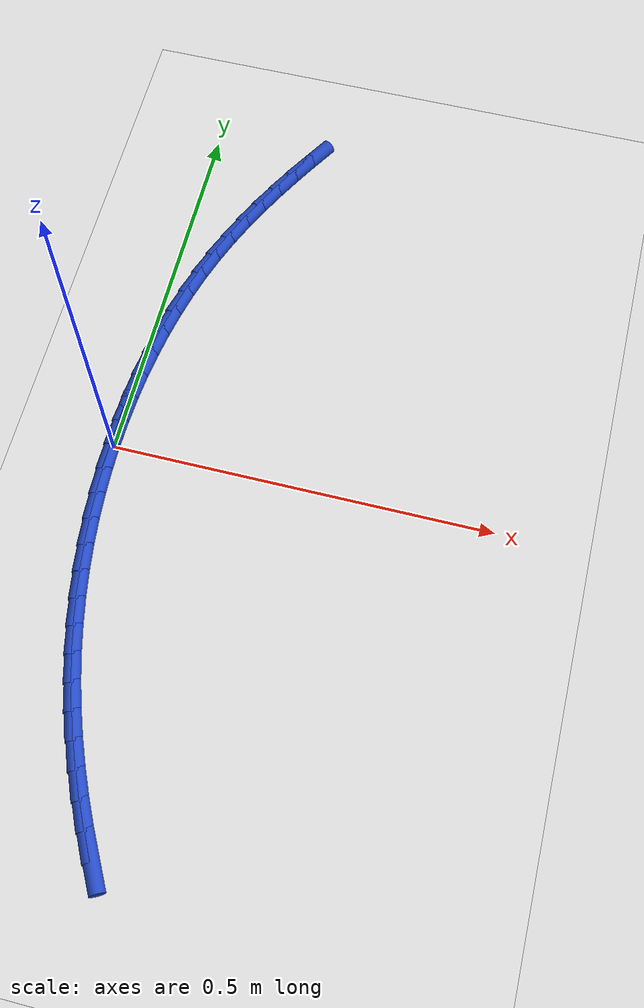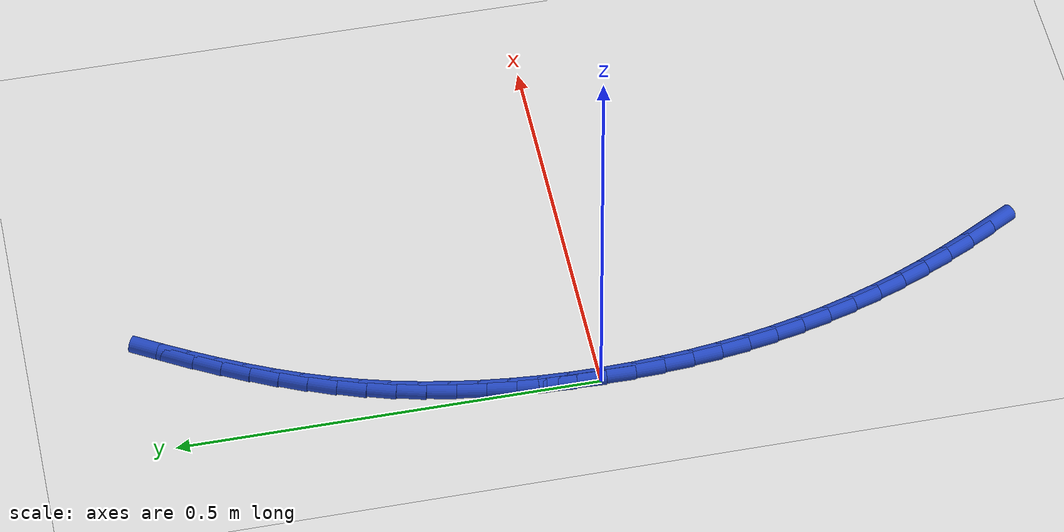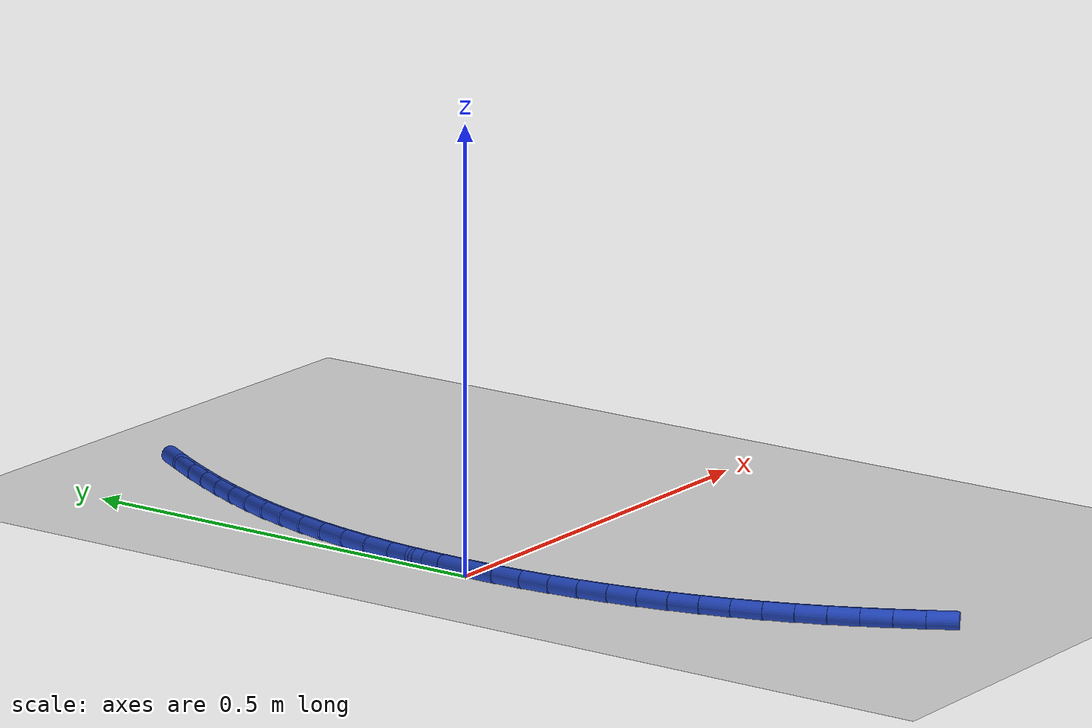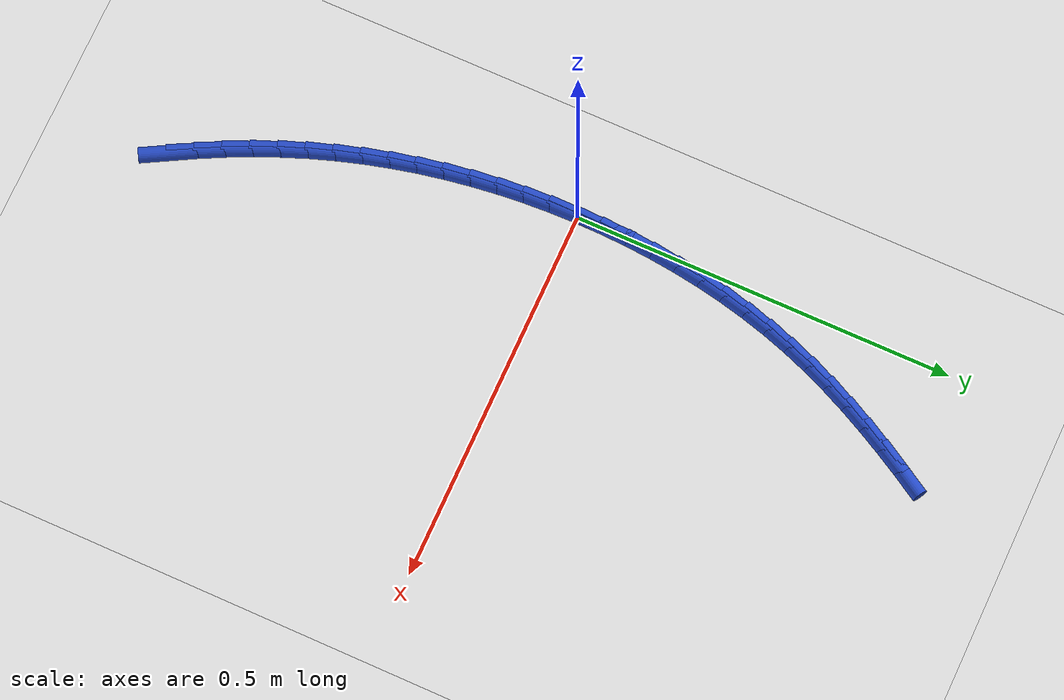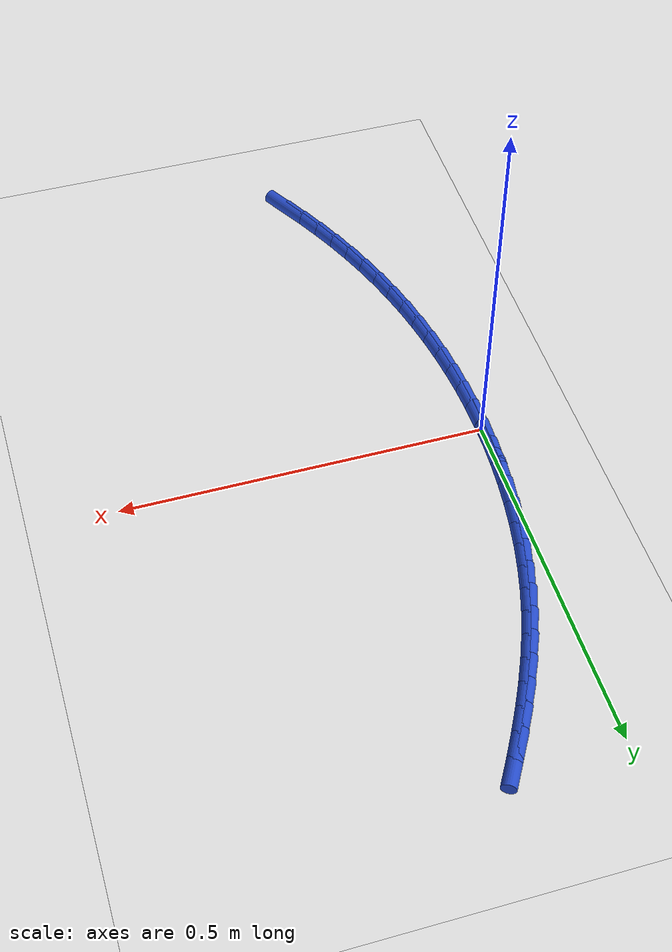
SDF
<sdf version="1.6">
 <world name="default">
  <model name="ground_plane">
   <static>1</static>
   <link name="link">
    <collision name="collision">
     <geometry><plane><normal>0 0 1</normal><size>100 100</size></plane></geometry>
     <surface><friction><ode><mu>100</mu><mu2>50</mu2></ode></friction></surface>
    </collision>
    <visual name="visual">
     <cast_shadows>0</cast_shadows>
     <geometry><plane><normal>0 0 1</normal><size>100 100</size></plane></geometry>
     <material>
      <script><uri>file://media/materials/scripts/gazebo.material</uri><name>Gazebo/WhiteGlow</name></script>
     </material>
    </visual>
   </link>
  </model>
  <model name="line">
   <link name="link_0">
    <pose>-2.42861286636753e-17 -3.469446951953614e-17 0.01 0 1.57 1.558813016870988</pose>
    <collision name="collision">
     <geometry><cylinder><radius>0.01</radius><length>0.08</length></cylinder></geometry>
    </collision>
    <visual name="visual">
     <material>
      <script><name>Gazebo/Blue</name><uri>file://media/materials/scripts/gazebo.material</uri></script>
     </material>
     <geometry><cylinder><radius>0.01</radius><length>0.08</length></cylinder></geometry>
    </visual>
   </link>
   <link name="link_1">
    <pose>0.00041849453326578585 0.0349214452294439 0.01 0 1.57 1.5253494940375614</pose>
    <collision name="collision">
     <geometry><cylinder><radius>0.01</radius><length>0.08</length></cylinder></geometry>
    </collision>
    <visual name="visual">
     <material>
      <script><name>Gazebo/Blue</name><uri>file://media/materials/scripts/gazebo.material</uri></script>
     </material>
     <geometry><cylinder><radius>0.01</radius><length>0.08</length></cylinder></geometry>
    </visual>
   </link>
   <link name="link_2">
    <pose>0.0020054214623804953 0.06981571900852142 0.01 0 1.57 1.4909088446430492</pose>
    <collision name="collision">
     <geometry><cylinder><radius>0.01</radius><length>0.08</length></cylinder></geometry>
    </collision>
    <visual name="visual">
     <material>
      <script><name>Gazebo/Blue</name><uri>file://media/materials/scripts/gazebo.material</uri></script>
     </material>
     <geometry><cylinder><radius>0.01</radius><length>0.08</length></cylinder></geometry>
    </visual>
   </link>
   <link name="link_3">
    <pose>0.004791187950977258 0.10461263121228428 0.01 0 1.57 1.4553692420791737</pose>
    <collision name="collision">
     <geometry><cylinder><radius>0.01</radius><length>0.08</length></cylinder></geometry>
    </collision>
    <visual name="visual">
     <material>
      <script><name>Gazebo/Blue</name><uri>file://media/materials/scripts/gazebo.material</uri></script>
     </material>
     <geometry><cylinder><radius>0.01</radius><length>0.08</length></cylinder></geometry>
    </visual>
   </link>
   <link name="link_4">
    <pose>0.00880620116268925 0.13924199171578444 0.01 0 1.57 1.4186114789655588</pose>
    <collision name="collision">
     <geometry><cylinder><radius>0.01</radius><length>0.08</length></cylinder></geometry>
    </collision>
    <visual name="visual">
     <material>
      <script><name>Gazebo/Blue</name><uri>file://media/materials/scripts/gazebo.material</uri></script>
     </material>
     <geometry><cylinder><radius>0.01</radius><length>0.08</length></cylinder></geometry>
    </visual>
   </link>
   <link name="link_5">
    <pose>0.014080868261149626 0.1736336103940736 0.01 0 1.57 1.3805202278129747</pose>
    <collision name="collision">
     <geometry><cylinder><radius>0.01</radius><length>0.08</length></cylinder></geometry>
    </collision>
    <visual name="visual">
     <material>
      <script><name>Gazebo/Blue</name><uri>file://media/materials/scripts/gazebo.material</uri></script>
     </material>
     <geometry><cylinder><radius>0.01</radius><length>0.08</length></cylinder></geometry>
    </visual>
   </link>
   <link name="link_6">
    <pose>0.02064559640999155 0.2077172971222037 0.01 0 1.57 1.3409858493786462</pose>
    <collision name="collision">
     <geometry><cylinder><radius>0.01</radius><length>0.08</length></cylinder></geometry>
    </collision>
    <visual name="visual">
     <material>
      <script><name>Gazebo/Blue</name><uri>file://media/materials/scripts/gazebo.material</uri></script>
     </material>
     <geometry><cylinder><radius>0.01</radius><length>0.08</length></cylinder></geometry>
    </visual>
   </link>
   <link name="link_7">
    <pose>0.0285307927728482 0.24142286177522657 0.01 0 1.57 1.2999068125460977</pose>
    <collision name="collision">
     <geometry><cylinder><radius>0.01</radius><length>0.08</length></cylinder></geometry>
    </collision>
    <visual name="visual">
     <material>
      <script><name>Gazebo/Blue</name><uri>file://media/materials/scripts/gazebo.material</uri></script>
     </material>
     <geometry><cylinder><radius>0.01</radius><length>0.08</length></cylinder></geometry>
    </visual>
   </link>
   <link name="link_8">
    <pose>0.03776686451335271 0.27468011422819394 0.01 0 1.57 1.2571927750422107</pose>
    <collision name="collision">
     <geometry><cylinder><radius>0.01</radius><length>0.08</length></cylinder></geometry>
    </collision>
    <visual name="visual">
     <material>
      <script><name>Gazebo/Blue</name><uri>file://media/materials/scripts/gazebo.material</uri></script>
     </material>
     <geometry><cylinder><radius>0.01</radius><length>0.08</length></cylinder></geometry>
    </visual>
   </link>
   <link name="link_9">
    <pose>0.048384218795138274 0.30741886435615773 0.01 0 1.57 1.2135847178669845</pose>
    <collision name="collision">
     <geometry><cylinder><radius>0.01</radius><length>0.08</length></cylinder></geometry>
    </collision>
    <visual name="visual">
     <material>
      <script><name>Gazebo/Blue</name><uri>file://media/materials/scripts/gazebo.material</uri></script>
     </material>
     <geometry><cylinder><radius>0.01</radius><length>0.08</length></cylinder></geometry>
    </visual>
   </link>
   <link name="link_10">
    <pose>0.060390142191742345 0.3395871175885453 0.01 0 1.57 1.1729028141526583</pose>
    <collision name="collision">
     <geometry><cylinder><radius>0.01</radius><length>0.08</length></cylinder></geometry>
    </collision>
    <visual name="visual">
     <material>
      <script><name>Gazebo/Blue</name><uri>file://media/materials/scripts/gazebo.material</uri></script>
     </material>
     <geometry><cylinder><radius>0.01</radius><length>0.08</length></cylinder></geometry>
    </visual>
   </link>
   <link name="link_11">
    <pose>0.0736846875532542 0.3712172706716929 0.01 0 1.57 1.1363858791967936</pose>
    <collision name="collision">
     <geometry><cylinder><radius>0.01</radius><length>0.08</length></cylinder></geometry>
    </collision>
    <visual name="visual">
     <material>
      <script><name>Gazebo/Blue</name><uri>file://media/materials/scripts/gazebo.material</uri></script>
     </material>
     <geometry><cylinder><radius>0.01</radius><length>0.08</length></cylinder></geometry>
    </visual>
   </link>
   <link name="link_12">
    <pose>0.08813684155119664 0.4023661689641478 0.01 0 1.57 1.1041198999825512</pose>
    <collision name="collision">
     <geometry><cylinder><radius>0.01</radius><length>0.08</length></cylinder></geometry>
    </collision>
    <visual name="visual">
     <material>
      <script><name>Gazebo/Blue</name><uri>file://media/materials/scripts/gazebo.material</uri></script>
     </material>
     <geometry><cylinder><radius>0.01</radius><length>0.08</length></cylinder></geometry>
    </visual>
   </link>
   <link name="link_13">
    <pose>0.10361558764086587 0.4330906603555794 0.01 0 1.57 1.0761330196046222</pose>
    <collision name="collision">
     <geometry><cylinder><radius>0.01</radius><length>0.08</length></cylinder></geometry>
    </collision>
    <visual name="visual">
     <material>
      <script><name>Gazebo/Blue</name><uri>file://media/materials/scripts/gazebo.material</uri></script>
     </material>
     <geometry><cylinder><radius>0.01</radius><length>0.08</length></cylinder></geometry>
    </visual>
   </link>
   <link name="link_14">
    <pose>0.11998990927755801 0.463447592735657 0.01 0 1.57 1.0524129822972674</pose>
    <collision name="collision">
     <geometry><cylinder><radius>0.01</radius><length>0.08</length></cylinder></geometry>
    </collision>
    <visual name="visual">
     <material>
      <script><name>Gazebo/Blue</name><uri>file://media/materials/scripts/gazebo.material</uri></script>
     </material>
     <geometry><cylinder><radius>0.01</radius><length>0.08</length></cylinder></geometry>
    </visual>
   </link>
   <link name="link_15">
    <pose>0.13712878991656907 0.49349381399404924 0.01 0 1.57 1.032922604050618</pose>
    <collision name="collision">
     <geometry><cylinder><radius>0.01</radius><length>0.08</length></cylinder></geometry>
    </collision>
    <visual name="visual">
     <material>
      <script><name>Gazebo/Blue</name><uri>file://media/materials/scripts/gazebo.material</uri></script>
     </material>
     <geometry><cylinder><radius>0.01</radius><length>0.08</length></cylinder></geometry>
    </visual>
   </link>
   <link name="link_185">
    <pose>0.1330105657562518 -0.49657750874766987 0.01 0 1.57 -1.0668962729431797</pose>
    <collision name="collision">
     <geometry><cylinder><radius>0.01</radius><length>0.08</length></cylinder></geometry>
    </collision>
    <visual name="visual">
     <material>
      <script><name>Gazebo/Blue</name><uri>file://media/materials/scripts/gazebo.material</uri></script>
     </material>
     <geometry><cylinder><radius>0.01</radius><length>0.08</length></cylinder></geometry>
    </visual>
   </link>
   <link name="link_186">
    <pose>0.11624509009995701 -0.46617097139133035 0.01 0 1.57 -1.098953292385434</pose>
    <collision name="collision">
     <geometry><cylinder><radius>0.01</radius><length>0.08</length></cylinder></geometry>
    </collision>
    <visual name="visual">
     <material>
      <script><name>Gazebo/Blue</name><uri>file://media/materials/scripts/gazebo.material</uri></script>
     </material>
     <geometry><cylinder><radius>0.01</radius><length>0.08</length></cylinder></geometry>
    </visual>
   </link>
   <link name="link_187">
    <pose>0.10049432276690143 -0.43530446350726 0.01 0 1.57 -1.1320217645624795</pose>
    <collision name="collision">
     <geometry><cylinder><radius>0.01</radius><length>0.08</length></cylinder></geometry>
    </collision>
    <visual name="visual">
     <material>
      <script><name>Gazebo/Blue</name><uri>file://media/materials/scripts/gazebo.material</uri></script>
     </material>
     <geometry><cylinder><radius>0.01</radius><length>0.08</length></cylinder></geometry>
    </visual>
   </link>
   <link name="link_188">
    <pose>0.0857970783039224 -0.40398604350678624 0.01 0 1.57 -1.166103938824333</pose>
    <collision name="collision">
     <geometry><cylinder><radius>0.01</radius><length>0.08</length></cylinder></geometry>
    </collision>
    <visual name="visual">
     <material>
      <script><name>Gazebo/Blue</name><uri>file://media/materials/scripts/gazebo.material</uri></script>
     </material>
     <geometry><cylinder><radius>0.01</radius><length>0.08</length></cylinder></geometry>
    </visual>
   </link>
   <link name="link_189">
    <pose>0.07219217125785736 -0.37222376980123667 0.01 0 1.57 -1.201192959454106</pose>
    <collision name="collision">
     <geometry><cylinder><radius>0.01</radius><length>0.08</length></cylinder></geometry>
    </collision>
    <visual name="visual">
     <material>
      <script><name>Gazebo/Blue</name><uri>file://media/materials/scripts/gazebo.material</uri></script>
     </material>
     <geometry><cylinder><radius>0.01</radius><length>0.08</length></cylinder></geometry>
    </visual>
   </link>
   <link name="link_190">
    <pose>0.059718416175543666 -0.34002570080193906 0.01 0 1.57 -1.2372717324368543</pose>
    <collision name="collision">
     <geometry><cylinder><radius>0.01</radius><length>0.08</length></cylinder></geometry>
    </collision>
    <visual name="visual">
     <material>
      <script><name>Gazebo/Blue</name><uri>file://media/materials/scripts/gazebo.material</uri></script>
     </material>
     <geometry><cylinder><radius>0.01</radius><length>0.08</length></cylinder></geometry>
    </visual>
   </link>
   <link name="link_191">
    <pose>0.04841462667889653 -0.30739989558984493 0.01 0 1.57 -1.2740099750191802</pose>
    <collision name="collision">
     <geometry><cylinder><radius>0.01</radius><length>0.08</length></cylinder></geometry>
    </collision>
    <visual name="visual">
     <material>
      <script><name>Gazebo/Blue</name><uri>file://media/materials/scripts/gazebo.material</uri></script>
     </material>
     <geometry><cylinder><radius>0.01</radius><length>0.08</length></cylinder></geometry>
    </visual>
   </link>
   <link name="link_192">
    <pose>0.038310682381725865 -0.27436088128253766 0.01 0 1.57 -1.3103534093452445</pose>
    <collision name="collision">
     <geometry><cylinder><radius>0.01</radius><length>0.08</length></cylinder></geometry>
    </collision>
    <visual name="visual">
     <material>
      <script><name>Gazebo/Blue</name><uri>file://media/materials/scripts/gazebo.material</uri></script>
     </material>
     <geometry><cylinder><radius>0.01</radius><length>0.08</length></cylinder></geometry>
    </visual>
   </link>
   <link name="link_193">
    <pose>0.029405624635824617 -0.24094551125989774 0.01 0 1.57 -1.3460998078835562</pose>
    <collision name="collision">
     <geometry><cylinder><radius>0.01</radius><length>0.08</length></cylinder></geometry>
    </collision>
    <visual name="visual">
     <material>
      <script><name>Gazebo/Blue</name><uri>file://media/materials/scripts/gazebo.material</uri></script>
     </material>
     <geometry><cylinder><radius>0.01</radius><length>0.08</length></cylinder></geometry>
    </visual>
   </link>
   <link name="link_194">
    <pose>0.021691845776311284 -0.20719545265201963 0.01 0 1.57 -1.381279400331365</pose>
    <collision name="collision">
     <geometry><cylinder><radius>0.01</radius><length>0.08</length></cylinder></geometry>
    </collision>
    <visual name="visual">
     <material>
      <script><name>Gazebo/Blue</name><uri>file://media/materials/scripts/gazebo.material</uri></script>
     </material>
     <geometry><cylinder><radius>0.01</radius><length>0.08</length></cylinder></geometry>
    </visual>
   </link>
   <link name="link_195">
    <pose>0.015161738138304123 -0.1731523725889971 0.01 0 1.57 -1.4159265750292274</pose>
    <collision name="collision">
     <geometry><cylinder><radius>0.01</radius><length>0.08</length></cylinder></geometry>
    </collision>
    <visual name="visual">
     <material>
      <script><name>Gazebo/Blue</name><uri>file://media/materials/scripts/gazebo.material</uri></script>
     </material>
     <geometry><cylinder><radius>0.01</radius><length>0.08</length></cylinder></geometry>
    </visual>
   </link>
   <link name="link_196">
    <pose>0.009807694056921392 -0.13885793820092385 0.01 0 1.57 -1.4500792481865672</pose>
    <collision name="collision">
     <geometry><cylinder><radius>0.01</radius><length>0.08</length></cylinder></geometry>
    </collision>
    <visual name="visual">
     <material>
      <script><name>Gazebo/Blue</name><uri>file://media/materials/scripts/gazebo.material</uri></script>
     </material>
     <geometry><cylinder><radius>0.01</radius><length>0.08</length></cylinder></geometry>
    </visual>
   </link>
   <link name="link_197">
    <pose>0.005622105867281349 -0.1043538166178937 0.01 0 1.57 -1.48377829502823</pose>
    <collision name="collision">
     <geometry><cylinder><radius>0.01</radius><length>0.08</length></cylinder></geometry>
    </collision>
    <visual name="visual">
     <material>
      <script><name>Gazebo/Blue</name><uri>file://media/materials/scripts/gazebo.material</uri></script>
     </material>
     <geometry><cylinder><radius>0.01</radius><length>0.08</length></cylinder></geometry>
    </visual>
   </link>
   <link name="link_198">
    <pose>0.0025973659045022616 -0.06968167497000052 0.01 0 1.57 -1.5170670441720908</pose>
    <collision name="collision">
     <geometry><cylinder><radius>0.01</radius><length>0.08</length></cylinder></geometry>
    </collision>
    <visual name="visual">
     <material>
      <script><name>Gazebo/Blue</name><uri>file://media/materials/scripts/gazebo.material</uri></script>
     </material>
     <geometry><cylinder><radius>0.01</radius><length>0.08</length></cylinder></geometry>
    </visual>
   </link>
   <link name="link_199">
    <pose>0.0007258665037023848 -0.03488318038733803 0.01 0 1.57 -1.5499908337837474</pose>
    <collision name="collision">
     <geometry><cylinder><radius>0.01</radius><length>0.08</length></cylinder></geometry>
    </collision>
    <visual name="visual">
     <material>
      <script><name>Gazebo/Blue</name><uri>file://media/materials/scripts/gazebo.material</uri></script>
     </material>
     <geometry><cylinder><radius>0.01</radius><length>0.08</length></cylinder></geometry>
    </visual>
   </link>
   <link name="link_200">
    <pose>-1.9949319973733282e-17 -2.0816681711721685e-17 0.01 0 1.57 1.5589960276276549</pose>
    <collision name="collision">
     <geometry><cylinder><radius>0.01</radius><length>0.08</length></cylinder></geometry>
    </collision>
    <visual name="visual">
     <material>
      <script><name>Gazebo/Blue</name><uri>file://media/materials/scripts/gazebo.material</uri></script>
     </material>
     <geometry><cylinder><radius>0.01</radius><length>0.08</length></cylinder></geometry>
    </visual>
   </link>
   <link name="link_201">
    <pose>0.00041215872851333227 0.034926199061920474 0.01 0 1.57 1.5589960276276549</pose>
    <collision name="collision">
     <geometry><cylinder><radius>0.01</radius><length>0.08</length></cylinder></geometry>
    </collision>
    <visual name="visual">
     <material>
      <script><name>Gazebo/Blue</name><uri>file://media/materials/scripts/gazebo.material</uri></script>
     </material>
     <geometry><cylinder><radius>0.01</radius><length>0.08</length></cylinder></geometry>
    </visual>
   </link>
  </model>
 </world>
</sdf>
